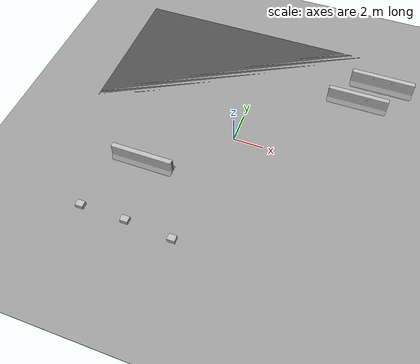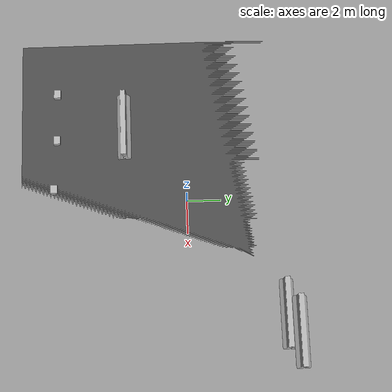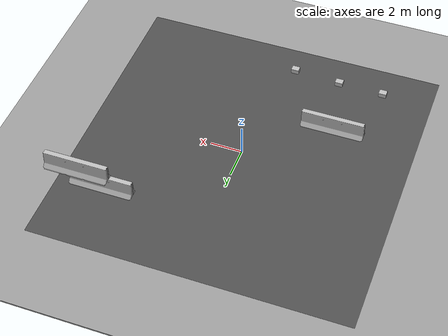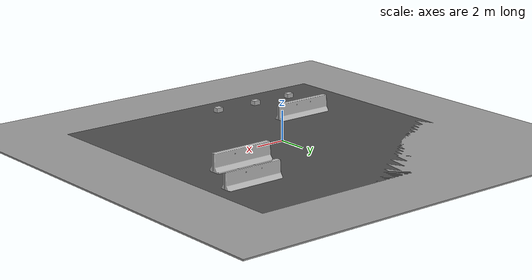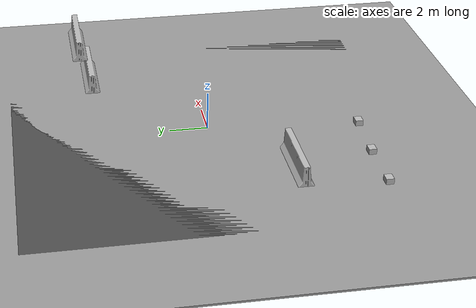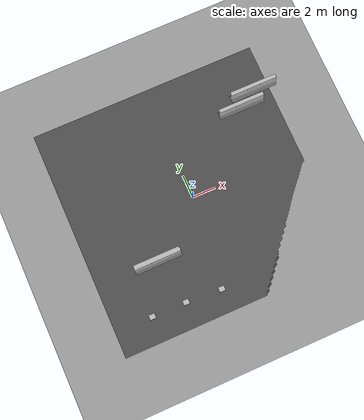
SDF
<sdf version="1.7">
 <world name="default">
  <light name="sun" type="directional">
   <pose>0 0 10 0 -0 0</pose>
   <diffuse>0.8 0.8 0.8 1</diffuse>
   <specular>0.2 0.2 0.2 1</specular>
   <attenuation>
    <range>1000</range>
    <constant>0.9</constant>
    <linear>0.01</linear>
    <quadratic>0.001</quadratic>
   </attenuation>
   <direction>-0.5 0.1 -0.9</direction>
   <spot><inner_angle>0</inner_angle><outer_angle>0</outer_angle><falloff>0</falloff></spot>
  </light>
  <model name="ground_plane">
   <static>1</static>
   <link name="link">
    <collision name="collision">
     <geometry><plane><normal>0 0 1</normal><size>100 100</size></plane></geometry>
     <surface>
      <contact><collide_bitmask>65535</collide_bitmask></contact>
      <friction><ode><mu>100</mu><mu2>50</mu2></ode></friction>
     </surface>
    </collision>
    <visual name="visual">
     <cast_shadows>0</cast_shadows>
     <geometry><plane><normal>0 0 1</normal><size>100 100</size></plane></geometry>
     <material>
      <script><uri>file://media/materials/scripts/gazebo.material</uri><name>Gazebo/Grey</name></script>
     </material>
    </visual>
   </link>
  </model>
  <gravity>0 0 -9.8</gravity>
  <magnetic_field>6e-06 2.3e-05 -4.2e-05</magnetic_field>
  <atmosphere type="adiabatic"/>
  <physics type="ode">
   <max_step_size>0.001</max_step_size>
   <real_time_factor>1</real_time_factor>
   <real_time_update_rate>1000</real_time_update_rate>
  </physics>
  <scene><ambient>0.4 0.4 0.4 1</ambient><background>0.7 0.7 0.7 1</background><shadows>1</shadows></scene>
  <spherical_coordinates>
   <surface_model>EARTH_WGS84</surface_model>
   <latitude_deg>0</latitude_deg>
   <longitude_deg>0</longitude_deg>
   <elevation>0</elevation>
   <heading_deg>0</heading_deg>
  </spherical_coordinates>
  <model name="cardboard_box">
   <pose>-6.95221 -7.69044 0.199 0 0 -0.004144</pose>
   <link name="link">
    <inertial>
     <mass>2</mass>
     <inertia>
      <ixx>0.0416667</ixx>
      <ixy>0</ixy>
      <ixz>0</ixz>
      <iyy>0.0566667</iyy>
      <iyz>0</iyz>
      <izz>0.0683333</izz>
     </inertia>
    </inertial>
    <collision name="collision">
     <geometry><box><size>0.5 0.4 0.3</size></box></geometry>
     <surface>
      <friction><ode><mu>1</mu><mu2>1</mu2></ode></friction>
      <contact><ode><kp>1e+07</kp><kd>1</kd><min_depth>0.001</min_depth><max_vel>0.1</max_vel></ode></contact>
     </surface>
    </collision>
    <visual name="visual">
     <pose>0 0 -0.15 0 -0 0</pose>
     <geometry>
      <mesh><uri>model://cardboard_box/meshes/cardboard_box.dae</uri><scale>1.25932 1.00745 0.755591</scale></mesh>
     </geometry>
    </visual>
   </link>
  </model>
  <model name="cardboard_box_0">
   <pose>-4.00589 -7.71841 0.199 0 -0 0</pose>
   <link name="link">
    <inertial>
     <mass>2</mass>
     <inertia>
      <ixx>0.0416667</ixx>
      <ixy>0</ixy>
      <ixz>0</ixz>
      <iyy>0.0566667</iyy>
      <iyz>0</iyz>
      <izz>0.0683333</izz>
     </inertia>
    </inertial>
    <collision name="collision">
     <geometry><box><size>0.5 0.4 0.3</size></box></geometry>
     <surface>
      <friction><ode><mu>1</mu><mu2>1</mu2></ode></friction>
      <contact><ode><kp>1e+07</kp><kd>1</kd><min_depth>0.001</min_depth><max_vel>0.1</max_vel></ode></contact>
     </surface>
    </collision>
    <visual name="visual">
     <pose>0 0 -0.15 0 -0 0</pose>
     <geometry>
      <mesh><uri>model://cardboard_box/meshes/cardboard_box.dae</uri><scale>1.25932 1.00745 0.755591</scale></mesh>
     </geometry>
    </visual>
   </link>
  </model>
  <model name="cardboard_box_1">
   <pose>-0.943872 -7.90828 0.199 0 -0 0</pose>
   <link name="link">
    <inertial>
     <mass>2</mass>
     <inertia>
      <ixx>0.0416667</ixx>
      <ixy>0</ixy>
      <ixz>0</ixz>
      <iyy>0.0566667</iyy>
      <iyz>0</iyz>
      <izz>0.0683333</izz>
     </inertia>
    </inertial>
    <collision name="collision">
     <geometry><box><size>0.5 0.4 0.3</size></box></geometry>
     <surface>
      <friction><ode><mu>1</mu><mu2>1</mu2></ode></friction>
      <contact><ode><kp>1e+07</kp><kd>1</kd><min_depth>0.001</min_depth><max_vel>0.1</max_vel></ode></contact>
     </surface>
    </collision>
    <visual name="visual">
     <pose>0 0 -0.15 0 -0 0</pose>
     <geometry>
      <mesh><uri>model://cardboard_box/meshes/cardboard_box.dae</uri><scale>1.25932 1.00745 0.755591</scale></mesh>
     </geometry>
    </visual>
   </link>
  </model>
  <model name="jersey_barrier">
   <static>1</static>
   <link name="link">
    <visual name="visual">
     <geometry><mesh><uri>model://jersey_barrier/meshes/jersey_barrier.dae</uri></mesh></geometry>
    </visual>
    <collision name="upright">
     <pose>0 0 0.5715 0 -0 0</pose>
     <geometry><box><size>4.06542 0.3063 1.143</size></box></geometry>
    </collision>
    <collision name="base">
     <pose>0 0 0.032258 0 -0 0</pose>
     <geometry><box><size>4.06542 0.8107 0.064516</size></box></geometry>
    </collision>
    <collision name="base2">
     <pose>0 0 0.1 0 -0 0</pose>
     <geometry><box><size>4.06542 0.65 0.1</size></box></geometry>
    </collision>
    <collision name="base3">
     <pose>0 0 0.2 0 -0 0</pose>
     <geometry><box><size>4.06542 0.5 0.1</size></box></geometry>
    </collision>
    <collision name="left-angle">
     <pose>0 -0.224 0.2401 0.9 -0 0</pose>
     <geometry><box><size>4.06542 0.5 0.064516</size></box></geometry>
    </collision>
    <collision name="right-angle">
     <pose>0 0.224 0.2401 -0.9 0 0</pose>
     <geometry><box><size>4.06542 0.5 0.064516</size></box></geometry>
    </collision>
   </link>
   <pose>-4.75664 -3.66125 0 0 -0 0</pose>
  </model>
  <model name="jersey_barrier_0">
   <static>1</static>
   <link name="link">
    <visual name="visual">
     <geometry><mesh><uri>model://jersey_barrier/meshes/jersey_barrier.dae</uri></mesh></geometry>
    </visual>
    <collision name="upright">
     <pose>0 0 0.5715 0 -0 0</pose>
     <geometry><box><size>4.06542 0.3063 1.143</size></box></geometry>
    </collision>
    <collision name="base">
     <pose>0 0 0.032258 0 -0 0</pose>
     <geometry><box><size>4.06542 0.8107 0.064516</size></box></geometry>
    </collision>
    <collision name="base2">
     <pose>0 0 0.1 0 -0 0</pose>
     <geometry><box><size>4.06542 0.65 0.1</size></box></geometry>
    </collision>
    <collision name="base3">
     <pose>0 0 0.2 0 -0 0</pose>
     <geometry><box><size>4.06542 0.5 0.1</size></box></geometry>
    </collision>
    <collision name="left-angle">
     <pose>0 -0.224 0.2401 0.9 -0 0</pose>
     <geometry><box><size>4.06542 0.5 0.064516</size></box></geometry>
    </collision>
    <collision name="right-angle">
     <pose>0 0.224 0.2401 -0.9 0 0</pose>
     <geometry><box><size>4.06542 0.5 0.064516</size></box></geometry>
    </collision>
   </link>
   <pose>8.14865 6.14677 1.49648 0 -0 0</pose>
  </model>
  <model name="jersey_barrier_1">
   <static>1</static>
   <link name="link">
    <visual name="visual">
     <geometry><mesh><uri>model://jersey_barrier/meshes/jersey_barrier.dae</uri></mesh></geometry>
    </visual>
    <collision name="upright">
     <pose>0 0 0.5715 0 -0 0</pose>
     <geometry><box><size>4.06542 0.3063 1.143</size></box></geometry>
    </collision>
    <collision name="base">
     <pose>0 0 0.032258 0 -0 0</pose>
     <geometry><box><size>4.06542 0.8107 0.064516</size></box></geometry>
    </collision>
    <collision name="base2">
     <pose>0 0 0.1 0 -0 0</pose>
     <geometry><box><size>4.06542 0.65 0.1</size></box></geometry>
    </collision>
    <collision name="base3">
     <pose>0 0 0.2 0 -0 0</pose>
     <geometry><box><size>4.06542 0.5 0.1</size></box></geometry>
    </collision>
    <collision name="left-angle">
     <pose>0 -0.224 0.2401 0.9 -0 0</pose>
     <geometry><box><size>4.06542 0.5 0.064516</size></box></geometry>
    </collision>
    <collision name="right-angle">
     <pose>0 0.224 0.2401 -0.9 0 0</pose>
     <geometry><box><size>4.06542 0.5 0.064516</size></box></geometry>
    </collision>
   </link>
   <pose>6.92937 5.60692 0 0 -0 0</pose>
  </model>
  <model name="asphalt_plane">
   <static>1</static>
   <link name="link">
    <collision name="collision"><geometry><box><size>20 20 0.1</size></box></geometry></collision>
    <visual name="visual">
     <cast_shadows>0</cast_shadows>
     <geometry><box><size>20 20 0.1</size></box></geometry>
     <material>
      <script>
       <uri>model://asphalt_plane/materials/scripts</uri>
       <uri>model://asphalt_plane/materials/textures</uri>
       <name>vrc/asphalt</name>
      </script>
     </material>
    </visual>
   </link>
   <pose>-0.188115 0.142333 0 0 -0 0</pose>
  </model>
  <model name="ground_plane_0">
   <static>1</static>
   <link name="link">
    <collision name="collision">
     <geometry><plane><normal>0 0 1</normal><size>100 100</size></plane></geometry>
     <surface><friction><ode><mu>100</mu><mu2>50</mu2></ode></friction></surface>
    </collision>
    <visual name="visual">
     <cast_shadows>0</cast_shadows>
     <geometry><plane><normal>0 0 1</normal><size>100 100</size></plane></geometry>
     <material>
      <script><uri>file://media/materials/scripts/gazebo.material</uri><name>Gazebo/Grey</name></script>
     </material>
    </visual>
   </link>
   <pose>4.89257 -4.48198 0 0 -0 0</pose>
  </model>
 </world>
</sdf>
